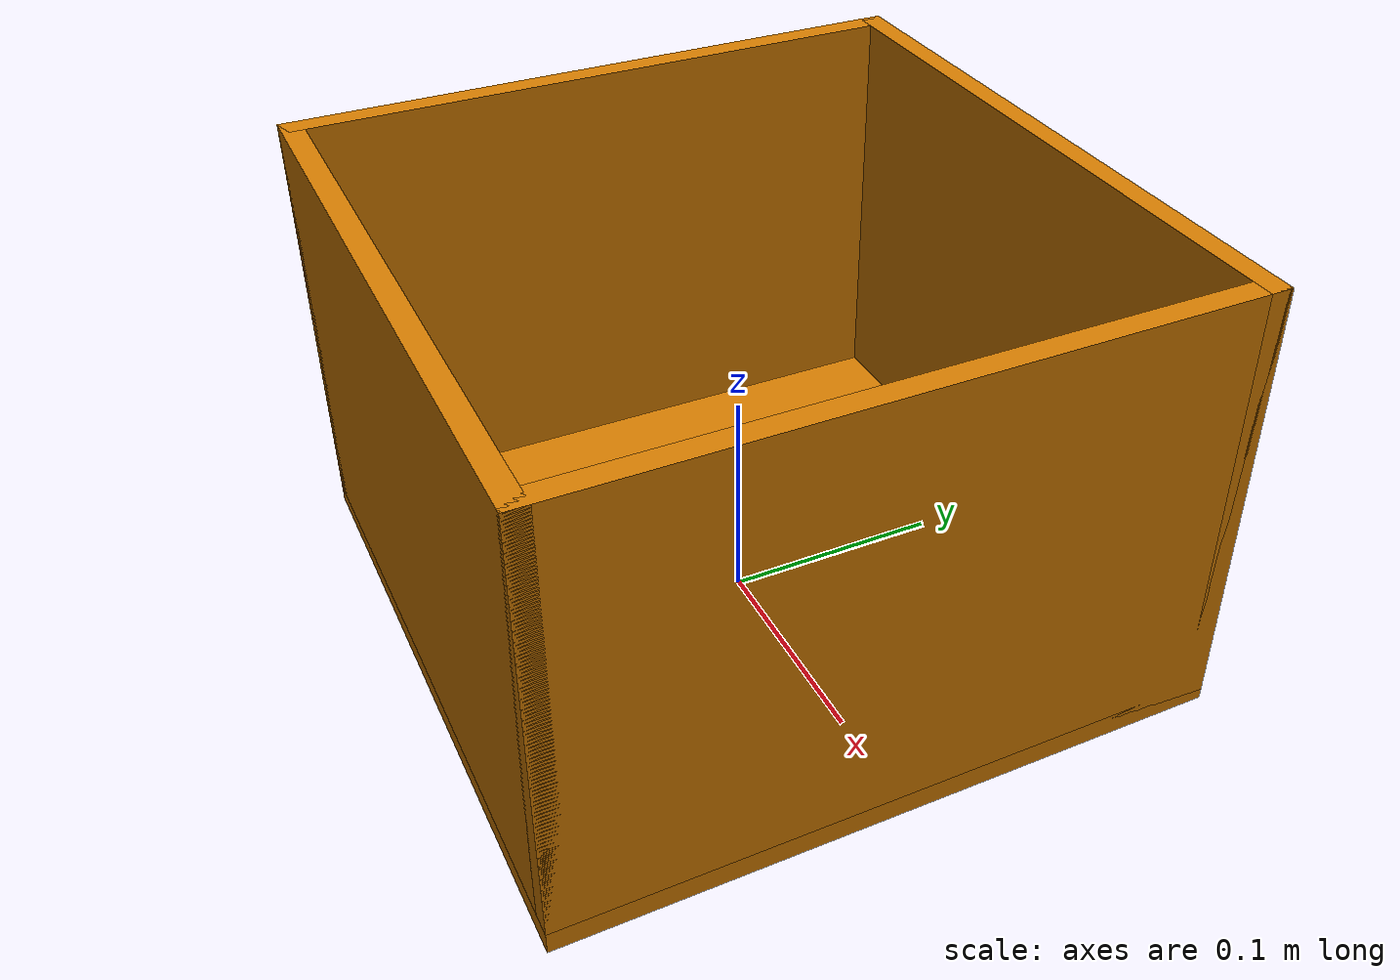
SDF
<?xml version="1.0"?>
<sdf version="1.7">
    <model name="insertion_box">
        <link name="insertion_box_link">
            <inertial>
                <inertia>
                    <ixx>1</ixx>
                    <ixy>0</ixy>
                    <ixz>0</ixz>
                    <iyy>1</iyy>
                    <iyz>0</iyz>
                    <izz>1</izz>
                </inertia>
                <mass>1000.0</mass>
            </inertial>
            <visual name="bottom_visual">
                <pose>0 0 0 0 0 0</pose>
                <geometry>
                    <box>
                        <size>0.3 0.3 0.01</size>
                    </box>
                </geometry>
                <material>
                    <diffuse>0.82 0.48 0.0 1.0</diffuse>
                </material>
            </visual>
            <collision name="bottom_collision">
                <pose>0 0 0 0 0 0</pose>
                <geometry>
                    <box>
                        <size>0.3 0.3 0.01</size>
                    </box>
                </geometry>
                <drake:proximity_properties>
                    <drake:compliant_hydroelastic/>
                    <drake:hydroelastic_modulus>1e8</drake:hydroelastic_modulus>
                    <drake:mesh_resolution_hint>1.0</drake:mesh_resolution_hint>
                    <drake:mu_dynamic>0.3</drake:mu_dynamic>
                    <drake:mu_static>0.3</drake:mu_static>
                    <drake:hunt_crossley_dissipation>3.0</drake:hunt_crossley_dissipation>
                </drake:proximity_properties>
            </collision>
            <visual name="side1_visual">
                <pose>0.145 0 0.1 0 0 0</pose>
                <geometry>
                    <box>
                        <size>0.01 0.3 0.2</size>
                    </box>
                </geometry>
                <material>
                    <diffuse>0.82 0.48 0.0 1.0</diffuse>
                </material>
            </visual>
            <collision name="side1_collision">
                <pose>0.145 0 0.1 0 0 0</pose>
                <geometry>
                    <box>
                        <size>0.01 0.3 0.2</size>
                    </box>
                </geometry>
                <drake:proximity_properties>
                    <drake:compliant_hydroelastic/>
                    <drake:hydroelastic_modulus>1e8</drake:hydroelastic_modulus>
                    <drake:mesh_resolution_hint>1.0</drake:mesh_resolution_hint>
                    <drake:mu_dynamic>0.3</drake:mu_dynamic>
                    <drake:mu_static>0.3</drake:mu_static>
                    <drake:hunt_crossley_dissipation>3.0</drake:hunt_crossley_dissipation>
                </drake:proximity_properties>
            </collision>
            <visual name="side2_visual">
                <pose>-0.145 0 0.1 0 0 0</pose>
                <geometry>
                    <box>
                        <size>0.01 0.3 0.2</size>
                    </box>
                </geometry>
                <material>
                    <diffuse>0.82 0.48 0.0 1.0</diffuse>
                </material>
            </visual>
            <collision name="side2_collision">
                <pose>-0.145 0 0.1 0 0 0</pose>
                <geometry>
                    <box>
                        <size>0.01 0.3 0.2</size>
                    </box>
                </geometry>
                <drake:proximity_properties>
                    <drake:compliant_hydroelastic/>
                    <drake:hydroelastic_modulus>1e8</drake:hydroelastic_modulus>
                    <drake:mesh_resolution_hint>1.0</drake:mesh_resolution_hint>
                    <drake:mu_dynamic>0.3</drake:mu_dynamic>
                    <drake:mu_static>0.3</drake:mu_static>
                    <drake:hunt_crossley_dissipation>3.0</drake:hunt_crossley_dissipation>
                </drake:proximity_properties>
            </collision>
            <visual name="side3_visual">
                <pose>0 0.145 0.1 0 0 0</pose>
                <geometry>
                    <box>
                        <size>0.3 0.01 0.2</size>
                    </box>
                </geometry>
                <material>
                    <diffuse>0.82 0.48 0.0 1.0</diffuse>
                </material>
            </visual>
            <collision name="side3_collision">
                <pose>0 0.145 0.1 0 0 0</pose>
                <geometry>
                    <box>
                        <size>0.3 0.01 0.2</size>
                    </box>
                </geometry>
                <drake:proximity_properties>
                    <drake:compliant_hydroelastic/>
                    <drake:hydroelastic_modulus>1e8</drake:hydroelastic_modulus>
                    <drake:mesh_resolution_hint>1.0</drake:mesh_resolution_hint>
                    <drake:mu_dynamic>0.3</drake:mu_dynamic>
                    <drake:mu_static>0.3</drake:mu_static>
                    <drake:hunt_crossley_dissipation>3.0</drake:hunt_crossley_dissipation>
                </drake:proximity_properties>
            </collision>
            <visual name="side4_visual">
                <pose>0 -0.145 0.1 0 0 0</pose>
                <geometry>
                    <box>
                        <size>0.3 0.01 0.2</size>
                    </box>
                </geometry>
                <material>
                    <diffuse>0.82 0.48 0.0 1.0</diffuse>
                </material>
            </visual>
            <collision name="side4_collision">
                <pose>0 -0.145 0.1 0 0 0</pose>
                <geometry>
                    <box>
                        <size>0.3 0.01 0.2</size>
                    </box>
                </geometry>
                <drake:proximity_properties>
                    <drake:compliant_hydroelastic/>
                    <drake:hydroelastic_modulus>1e8</drake:hydroelastic_modulus>
                    <drake:mesh_resolution_hint>1.0</drake:mesh_resolution_hint>
                    <drake:mu_dynamic>0.3</drake:mu_dynamic>
                    <drake:mu_static>0.3</drake:mu_static>
                    <drake:hunt_crossley_dissipation>3.0</drake:hunt_crossley_dissipation>
                </drake:proximity_properties>
            </collision>

        </link>
        <frame name="insertion_box_bottom_center">
            <pose relative_to="insertion_box_link">0 0 -0.005 0 0 0</pose>
        </frame>
    </model>
</sdf>
